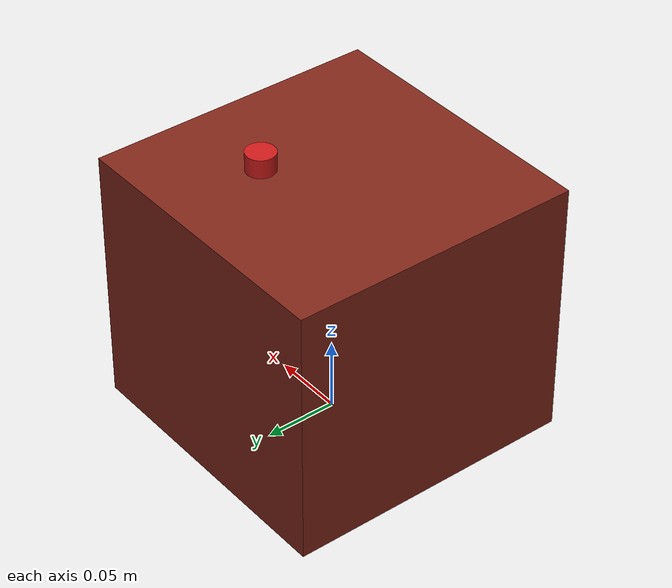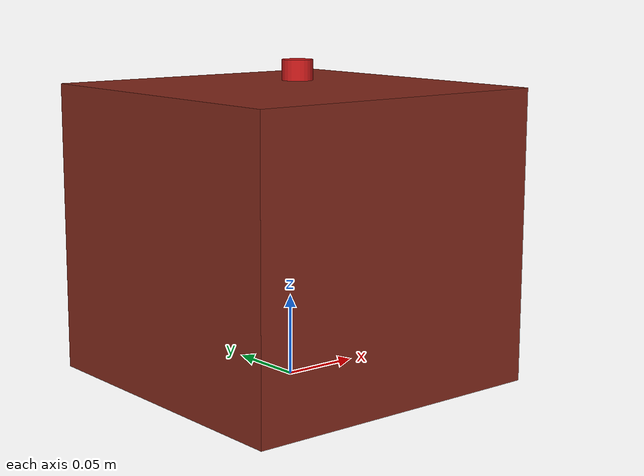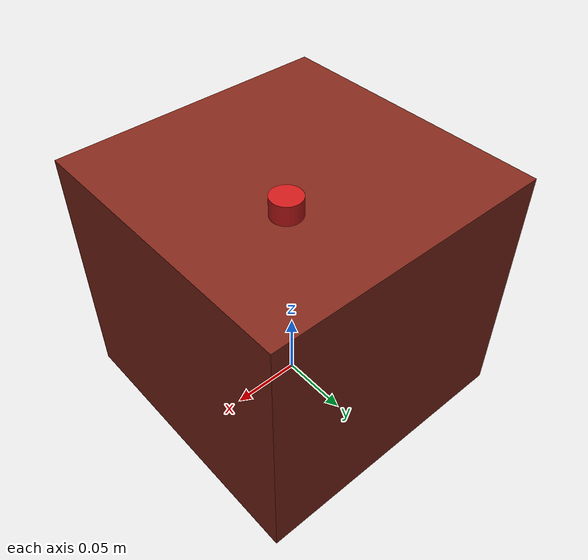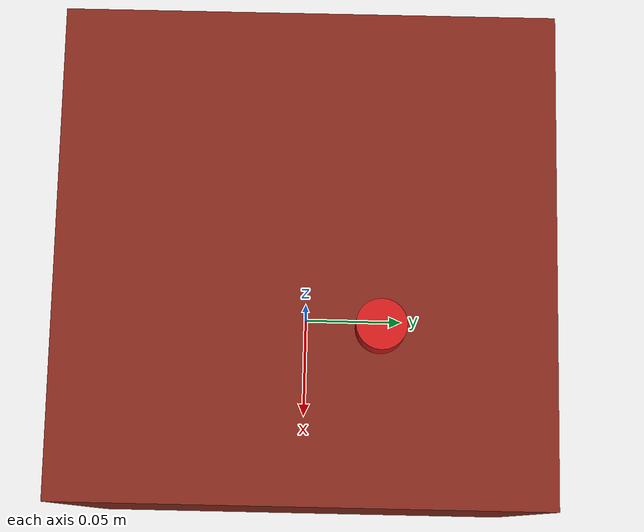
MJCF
<?xml version="1.0" encoding="utf-8"?>
<mujoco model="muffle_furnace">
  <compiler angle="radian" autolimits="true"/>
  <default>
    <default class="body"><geom contype="1" conaffinity="1"/></default>
  </default>
  <worldbody>
    <body name="base">
      <geom type="box" size="0.1 0.1 0.09" pos="0 0 0.09" rgba="0.5 0.15 0.1 1" class="body"/>
      <geom type="box" size="0.03 0.005000000000000001 0.0225" pos="-0.05 -0.09000000000000001 0.135" rgba="0.9 0.3 0.1 1" class="body"/>
      <body name="knob" pos="0.03 0.03 0.185">
        <joint name="knob_joint" type="hinge" axis="0 0 1" range="-3.14159 3.14159" damping="0.3" frictionloss="0.1"/>
  <geom type="cylinder" size="0.01 0.008" pos="0 0 0" rgba="0.8 0.1 0.1 1" class="body"/>
      </body>
    </body>
  </worldbody>
</mujoco>
